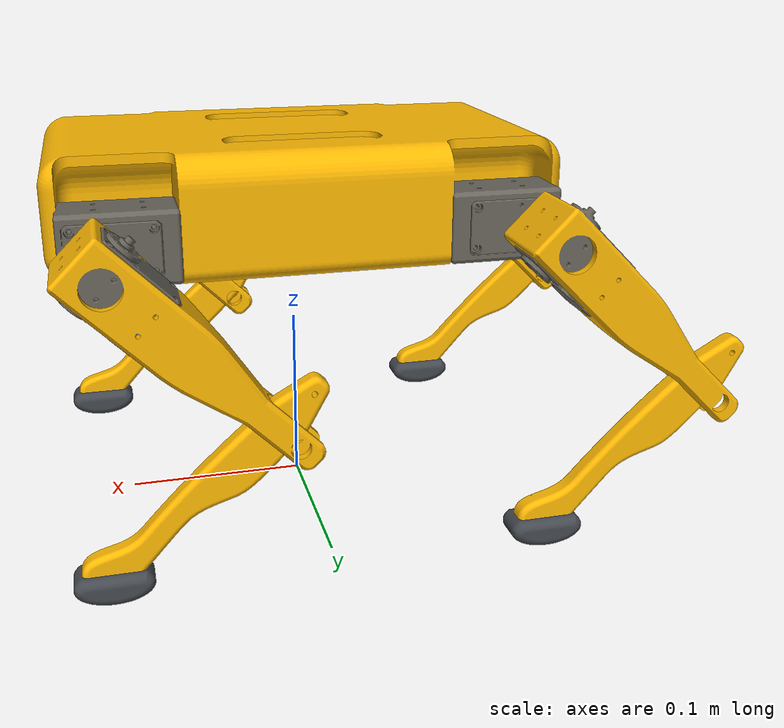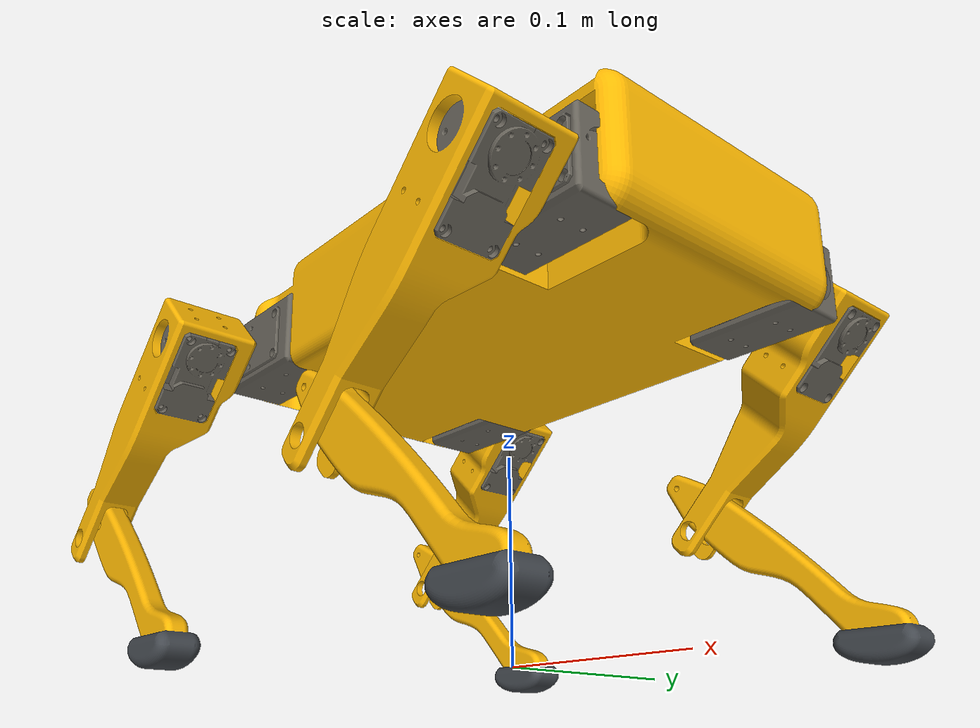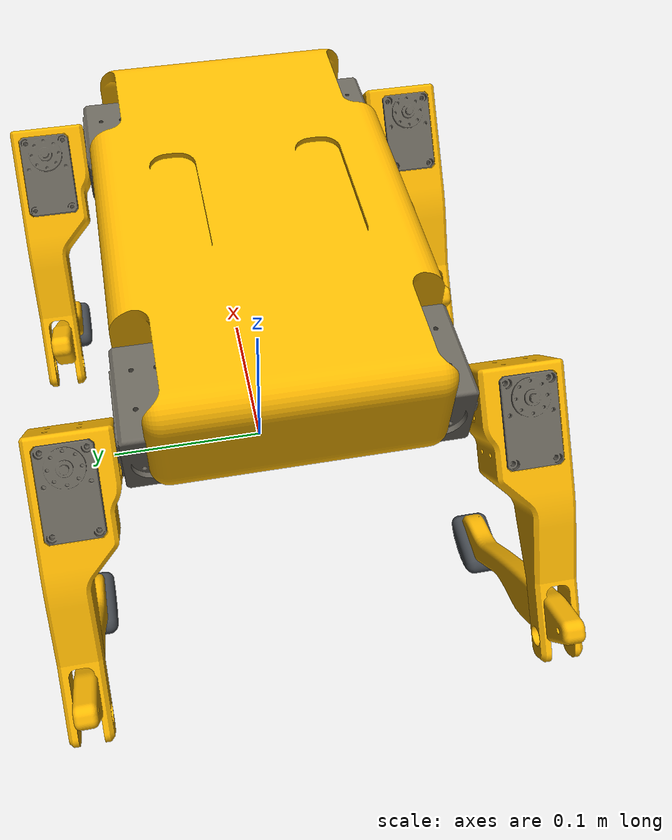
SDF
<sdf version='1.7'>
  <model name='quadruped'>
    <link name='base_footprint'>
      <inertial>
        <pose>0.001495 0.000162 0.172991 0 -0 0</pose>
        <mass>1.284</mass>
        <inertia>
          <ixx>0.00329487</ixx>
          <ixy>-2.69697e-06</ixy>
          <ixz>-1.45779e-05</ixz>
          <iyy>0.00465587</iyy>
          <iyz>-1.16619e-05</iyz>
          <izz>0.00726379</izz>
        </inertia>
      </inertial>
      <collision name='base_footprint_fixed_joint_lump__base_link_collision'>
        <pose>0 0 0.1492 0 -0 0</pose>
        <geometry>
          <mesh>
            <scale>1 1 1</scale>
            <uri>file:///home/almeida/caramel_ws/install/caramel_description/share/caramel_description/meshes/base_link.stl</uri>
          </mesh>
        </geometry>
        <surface>
          <contact>
            <ode/>
          </contact>
          <friction>
            <ode>
              <mu>0.4</mu>
              <mu2>0.4</mu2>
            </ode>
          </friction>
        </surface>
      </collision>
      <collision name='base_footprint_fixed_joint_lump__back_left_hip_fixed_collision_1'>
        <pose>-0.11455 0.07 0.17 0 -0 0</pose>
        <geometry>
          <sphere>
            <radius>0.001</radius>
          </sphere>
        </geometry>
      </collision>
      <collision name='base_footprint_fixed_joint_lump__back_right_hip_fixed_collision_2'>
        <pose>-0.11455 -0.07 0.17 0 -0 0</pose>
        <geometry>
          <sphere>
            <radius>0.001</radius>
          </sphere>
        </geometry>
      </collision>
      <collision name='base_footprint_fixed_joint_lump__front_left_hip_fixed_collision_3'>
        <pose>0.11455 0.07 0.17 0 -0 0</pose>
        <geometry>
          <sphere>
            <radius>0.001</radius>
          </sphere>
        </geometry>
      </collision>
      <collision name='base_footprint_fixed_joint_lump__front_right_hip_fixed_collision_4'>
        <pose>0.11455 -0.07 0.17 0 -0 0</pose>
        <geometry>
          <sphere>
            <radius>0.001</radius>
          </sphere>
        </geometry>
      </collision>
      <visual name='base_footprint_fixed_joint_lump__base_link_visual'>
        <pose>0 0 0.1492 0 -0 0</pose>
        <geometry>
          <mesh>
            <scale>1 1 1</scale>
            <uri>file:///home/almeida/caramel_ws/install/caramel_description/share/caramel_description/meshes/base_link.dae</uri>
          </mesh>
        </geometry>
      </visual>
      <self_collide>1</self_collide>
      <gravity>1</gravity>
      <sensor name='imu_sensor' type='imu'>
        <always_on>1</always_on>
        <update_rate>100</update_rate>
        <visualize>1</visualize>
        <topic>imu</topic>
        <plugin name='imu' filename='libgazebo_ros_imu_sensor.so'>
          <topicName>imu</topicName>
          <bodyName>imu_link</bodyName>
          <updateRateHZ>50.0</updateRateHZ>
          <gaussianNoise>0.0</gaussianNoise>
          <xyzOffset>0 0 0</xyzOffset>
          <rpyOffset>0 0 0</rpyOffset>
          <frameName>imu_link</frameName>
          <initialOrientationAsReference>0</initialOrientationAsReference>
        </plugin>
        <pose>0 0 0.17 0 -0 0</pose>
      </sensor>
    </link>
    <joint name='back_left_hip_roll_joint' type='revolute'>
      <pose relative_to='base_footprint'>-0.11455 0.07 0.17 0 -0 0</pose>
      <parent>base_footprint</parent>
      <child>back_left_hip</child>
      <axis>
        <xyz>1 0 0</xyz>
        <limit>
          <lower>-0.785375</lower>
          <upper>0.785375</upper>
          <effort>2</effort>
          <velocity>5.75</velocity>
        </limit>
        <dynamics>
          <damping>0.1</damping>
          <friction>0.01</friction>
          <spring_reference>0</spring_reference>
          <spring_stiffness>0</spring_stiffness>
        </dynamics>
      </axis>
    </joint>
    <link name='back_left_hip'>
      <pose relative_to='back_left_hip_roll_joint'>0 0 0 0 -0 0</pose>
      <inertial>
        <pose>0.011 0 0 3.1415 -0 3.1415</pose>
        <mass>0.077</mass>
        <inertia>
          <ixx>1.365e-05</ixx>
          <ixy>-6.888e-07</ixy>
          <ixz>2.025e-08</ixz>
          <iyy>1.824e-05</iyy>
          <iyz>-8.308e-09</iyz>
          <izz>2.204e-05</izz>
        </inertia>
      </inertial>
      <collision name='back_left_hip_collision'>
        <pose>0.0149 0 0 0 -0 0</pose>
        <geometry>
          <box>
            <size>0.0538 0.036 0.036</size>
          </box>
        </geometry>
        <surface>
          <contact>
            <ode/>
          </contact>
          <friction>
            <ode>
              <mu>0.4</mu>
              <mu2>0.4</mu2>
            </ode>
          </friction>
        </surface>
      </collision>
      <visual name='back_left_hip_visual'>
        <pose>0 0 0 3.1415 -0 3.1415</pose>
        <geometry>
          <mesh>
            <scale>1 1 1</scale>
            <uri>file:///home/almeida/caramel_ws/install/caramel_description/share/caramel_description/meshes/hip.dae</uri>
          </mesh>
        </geometry>
      </visual>
      <self_collide>1</self_collide>
    </link>
    <joint name='back_left_hip_pitch_joint' type='revolute'>
      <pose relative_to='back_left_hip'>0 0.0415 0 0 0.785375 0</pose>
      <parent>back_left_hip</parent>
      <child>back_left_femur</child>
      <axis>
        <xyz>0 1 0</xyz>
        <limit>
          <lower>-1.04717</lower>
          <upper>1.04717</upper>
          <effort>2</effort>
          <velocity>5.75</velocity>
        </limit>
        <dynamics>
          <damping>0.1</damping>
          <friction>0.01</friction>
          <spring_reference>0</spring_reference>
          <spring_stiffness>0</spring_stiffness>
        </dynamics>
      </axis>
    </joint>
    <link name='back_left_femur'>
      <pose relative_to='back_left_hip_pitch_joint'>0 0 0 0 -0 0</pose>
      <inertial>
        <pose>-0.000183 0.002 -0.019 0 -0 0</pose>
        <mass>0.118</mass>
        <inertia>
          <ixx>0.0001604</ixx>
          <ixy>-5.665e-08</ixy>
          <ixz>1.15e-06</ixz>
          <iyy>0.0001647</iyy>
          <iyz>1.108e-05</iyz>
          <izz>2.1e-05</izz>
        </inertia>
      </inertial>
      <collision name='back_left_femur_collision'>
        <pose>0 0 -0.0053 0 -0 0</pose>
        <geometry>
          <mesh>
            <scale>1 1 1</scale>
            <uri>file:///home/almeida/caramel_ws/install/caramel_description/share/caramel_description/meshes/femur.stl</uri>
          </mesh>
        </geometry>
        <surface>
          <contact>
            <ode/>
          </contact>
          <friction>
            <ode>
              <mu>0.4</mu>
              <mu2>0.4</mu2>
            </ode>
          </friction>
        </surface>
      </collision>
      <visual name='back_left_femur_visual'>
        <pose>0 0 -0.0053 0 -0 0</pose>
        <geometry>
          <mesh>
            <scale>1 1 1</scale>
            <uri>file:///home/almeida/caramel_ws/install/caramel_description/share/caramel_description/meshes/left_femur.dae</uri>
          </mesh>
        </geometry>
      </visual>
      <self_collide>1</self_collide>
    </link>
    <joint name='back_left_elbow_joint' type='revolute'>
      <pose relative_to='back_left_femur'>0 0.0068 -0.12 0 -1.57075 0</pose>
      <parent>back_left_femur</parent>
      <child>back_left_tibia</child>
      <axis>
        <xyz>0 1 0</xyz>
        <limit>
          <lower>-0.6283</lower>
          <upper>0.6283</upper>
          <effort>2</effort>
          <velocity>5.75</velocity>
        </limit>
        <dynamics>
          <damping>0</damping>
          <friction>0.01</friction>
          <spring_reference>0</spring_reference>
          <spring_stiffness>0</spring_stiffness>
        </dynamics>
      </axis>
    </joint>
    <link name='back_left_tibia'>
      <pose relative_to='back_left_elbow_joint'>0 0 0 0 -0 0</pose>
      <inertial>
        <pose>0.005 0 -0.06 0 -0 0</pose>
        <mass>0.035</mass>
        <inertia>
          <ixx>8.305e-05</ixx>
          <ixy>-4.892e-10</ixy>
          <ixz>6.002e-06</ixz>
          <iyy>8.447e-05</iyy>
          <iyz>-4.088e-10</iyz>
          <izz>2.687e-06</izz>
        </inertia>
      </inertial>
      <collision name='back_left_tibia_collision'>
        <pose>0 0 0 0 -0 0</pose>
        <geometry>
          <mesh>
            <scale>1 1 1</scale>
            <uri>file:///home/almeida/caramel_ws/install/caramel_description/share/caramel_description/meshes/tibia.stl</uri>
          </mesh>
        </geometry>
        <surface>
          <contact>
            <ode>
              <kp>1e+06</kp>
              <kd>100</kd>
              <min_depth>0.0002</min_depth>
            </ode>
          </contact>
          <friction>
            <ode>
              <mu>1</mu>
              <mu2>1</mu2>
            </ode>
          </friction>
        </surface>
      </collision>
      <visual name='back_left_tibia_visual'>
        <pose>0 0 0 0 -0 0</pose>
        <geometry>
          <mesh>
            <scale>1 1 1</scale>
            <uri>file:///home/almeida/caramel_ws/install/caramel_description/share/caramel_description/meshes/tibia.dae</uri>
          </mesh>
        </geometry>
      </visual>
      <self_collide>1</self_collide>
    </link>
    <joint name='back_right_hip_roll_joint' type='revolute'>
      <pose relative_to='base_footprint'>-0.11455 -0.07 0.17 0 -0 0</pose>
      <parent>base_footprint</parent>
      <child>back_right_hip</child>
      <axis>
        <xyz>1 0 0</xyz>
        <limit>
          <lower>-0.785375</lower>
          <upper>0.785375</upper>
          <effort>2</effort>
          <velocity>5.75</velocity>
        </limit>
        <dynamics>
          <damping>0.1</damping>
          <friction>0.01</friction>
          <spring_reference>0</spring_reference>
          <spring_stiffness>0</spring_stiffness>
        </dynamics>
      </axis>
    </joint>
    <link name='back_right_hip'>
      <pose relative_to='back_right_hip_roll_joint'>0 0 0 0 -0 0</pose>
      <inertial>
        <pose>0.011 0 0 0 -0 3.1415</pose>
        <mass>0.077</mass>
        <inertia>
          <ixx>1.365e-05</ixx>
          <ixy>-6.888e-07</ixy>
          <ixz>2.025e-08</ixz>
          <iyy>1.824e-05</iyy>
          <iyz>-8.308e-09</iyz>
          <izz>2.204e-05</izz>
        </inertia>
      </inertial>
      <collision name='back_right_hip_collision'>
        <pose>0.0149 0 0 0 -0 0</pose>
        <geometry>
          <box>
            <size>0.0538 0.036 0.036</size>
          </box>
        </geometry>
        <surface>
          <contact>
            <ode/>
          </contact>
          <friction>
            <ode>
              <mu>0.4</mu>
              <mu2>0.4</mu2>
            </ode>
          </friction>
        </surface>
      </collision>
      <visual name='back_right_hip_visual'>
        <pose>0 0 0 0 -0 3.1415</pose>
        <geometry>
          <mesh>
            <scale>1 1 1</scale>
            <uri>file:///home/almeida/caramel_ws/install/caramel_description/share/caramel_description/meshes/hip.dae</uri>
          </mesh>
        </geometry>
      </visual>
      <self_collide>1</self_collide>
    </link>
    <joint name='back_right_hip_pitch_joint' type='revolute'>
      <pose relative_to='back_right_hip'>0 -0.0415 0 0 0.785375 0</pose>
      <parent>back_right_hip</parent>
      <child>back_right_femur</child>
      <axis>
        <xyz>0 1 0</xyz>
        <limit>
          <lower>-1.04717</lower>
          <upper>1.04717</upper>
          <effort>2</effort>
          <velocity>5.75</velocity>
        </limit>
        <dynamics>
          <damping>0.1</damping>
          <friction>0.01</friction>
          <spring_reference>0</spring_reference>
          <spring_stiffness>0</spring_stiffness>
        </dynamics>
      </axis>
    </joint>
    <link name='back_right_femur'>
      <pose relative_to='back_right_hip_pitch_joint'>0 0 0 0 -0 0</pose>
      <inertial>
        <pose>-0.000183 -0.002 -0.019 0 -0 0</pose>
        <mass>0.118</mass>
        <inertia>
          <ixx>0.0001604</ixx>
          <ixy>3.969e-08</ixy>
          <ixz>1.151e-06</ixz>
          <iyy>0.0001647</iyy>
          <iyz>-1.105e-05</iyz>
          <izz>2.099e-05</izz>
        </inertia>
      </inertial>
      <collision name='back_right_femur_collision'>
        <pose>0 0 -0.0053 0 -0 3.1415</pose>
        <geometry>
          <mesh>
            <scale>1 1 1</scale>
            <uri>file:///home/almeida/caramel_ws/install/caramel_description/share/caramel_description/meshes/femur.stl</uri>
          </mesh>
        </geometry>
        <surface>
          <contact>
            <ode/>
          </contact>
          <friction>
            <ode>
              <mu>0.4</mu>
              <mu2>0.4</mu2>
            </ode>
          </friction>
        </surface>
      </collision>
      <visual name='back_right_femur_visual'>
        <pose>0 0 -0.0053 0 -0 0</pose>
        <geometry>
          <mesh>
            <scale>1 1 1</scale>
            <uri>file:///home/almeida/caramel_ws/install/caramel_description/share/caramel_description/meshes/right_femur.dae</uri>
          </mesh>
        </geometry>
      </visual>
      <self_collide>1</self_collide>
    </link>
    <joint name='back_right_elbow_joint' type='revolute'>
      <pose relative_to='back_right_femur'>0 -0.0068 -0.12 0 -1.57075 0</pose>
      <parent>back_right_femur</parent>
      <child>back_right_tibia</child>
      <axis>
        <xyz>0 1 0</xyz>
        <limit>
          <lower>-0.6283</lower>
          <upper>0.6283</upper>
          <effort>2</effort>
          <velocity>5.75</velocity>
        </limit>
        <dynamics>
          <damping>0</damping>
          <friction>0.01</friction>
          <spring_reference>0</spring_reference>
          <spring_stiffness>0</spring_stiffness>
        </dynamics>
      </axis>
    </joint>
    <link name='back_right_tibia'>
      <pose relative_to='back_right_elbow_joint'>0 0 0 0 -0 0</pose>
      <inertial>
        <pose>0.005 0 -0.06 0 -0 0</pose>
        <mass>0.035</mass>
        <inertia>
          <ixx>8.305e-05</ixx>
          <ixy>-4.892e-10</ixy>
          <ixz>6.002e-06</ixz>
          <iyy>8.447e-05</iyy>
          <iyz>-4.088e-10</iyz>
          <izz>2.687e-06</izz>
        </inertia>
      </inertial>
      <collision name='back_right_tibia_collision'>
        <pose>0 0 0 0 -0 0</pose>
        <geometry>
          <mesh>
            <scale>1 1 1</scale>
            <uri>file:///home/almeida/caramel_ws/install/caramel_description/share/caramel_description/meshes/tibia.stl</uri>
          </mesh>
        </geometry>
        <surface>
          <contact>
            <ode>
              <kp>1e+06</kp>
              <kd>100</kd>
              <min_depth>0.0002</min_depth>
            </ode>
          </contact>
          <friction>
            <ode>
              <mu>1</mu>
              <mu2>1</mu2>
            </ode>
          </friction>
        </surface>
      </collision>
      <visual name='back_right_tibia_visual'>
        <pose>0 0 0 0 -0 0</pose>
        <geometry>
          <mesh>
            <scale>1 1 1</scale>
            <uri>file:///home/almeida/caramel_ws/install/caramel_description/share/caramel_description/meshes/tibia.dae</uri>
          </mesh>
        </geometry>
      </visual>
      <self_collide>1</self_collide>
    </link>
    <joint name='front_left_hip_roll_joint' type='revolute'>
      <pose relative_to='base_footprint'>0.11455 0.07 0.17 0 -0 0</pose>
      <parent>base_footprint</parent>
      <child>front_left_hip</child>
      <axis>
        <xyz>1 0 0</xyz>
        <limit>
          <lower>-0.785375</lower>
          <upper>0.785375</upper>
          <effort>2</effort>
          <velocity>5.75</velocity>
        </limit>
        <dynamics>
          <damping>0.1</damping>
          <friction>0.01</friction>
          <spring_reference>0</spring_reference>
          <spring_stiffness>0</spring_stiffness>
        </dynamics>
      </axis>
    </joint>
    <link name='front_left_hip'>
      <pose relative_to='front_left_hip_roll_joint'>0 0 0 0 -0 0</pose>
      <inertial>
        <pose>-0.011 0 0 0 -0 0</pose>
        <mass>0.077</mass>
        <inertia>
          <ixx>1.365e-05</ixx>
          <ixy>-6.888e-07</ixy>
          <ixz>2.025e-08</ixz>
          <iyy>1.824e-05</iyy>
          <iyz>-8.308e-09</iyz>
          <izz>2.204e-05</izz>
        </inertia>
      </inertial>
      <collision name='front_left_hip_collision'>
        <pose>-0.0149 0 0 0 -0 0</pose>
        <geometry>
          <box>
            <size>0.0538 0.036 0.036</size>
          </box>
        </geometry>
        <surface>
          <contact>
            <ode/>
          </contact>
          <friction>
            <ode>
              <mu>0.4</mu>
              <mu2>0.4</mu2>
            </ode>
          </friction>
        </surface>
      </collision>
      <visual name='front_left_hip_visual'>
        <pose>0 0 0 0 -0 0</pose>
        <geometry>
          <mesh>
            <scale>1 1 1</scale>
            <uri>file:///home/almeida/caramel_ws/install/caramel_description/share/caramel_description/meshes/hip.dae</uri>
          </mesh>
        </geometry>
      </visual>
      <self_collide>1</self_collide>
    </link>
    <joint name='front_left_hip_pitch_joint' type='revolute'>
      <pose relative_to='front_left_hip'>0 0.0415 0 0 0.785375 0</pose>
      <parent>front_left_hip</parent>
      <child>front_left_femur</child>
      <axis>
        <xyz>0 1 0</xyz>
        <limit>
          <lower>-1.04717</lower>
          <upper>1.04717</upper>
          <effort>2</effort>
          <velocity>5.75</velocity>
        </limit>
        <dynamics>
          <damping>0.1</damping>
          <friction>0.01</friction>
          <spring_reference>0</spring_reference>
          <spring_stiffness>0</spring_stiffness>
        </dynamics>
      </axis>
    </joint>
    <link name='front_left_femur'>
      <pose relative_to='front_left_hip_pitch_joint'>0 0 0 0 -0 0</pose>
      <inertial>
        <pose>-0.000183 0.002 -0.019 0 -0 0</pose>
        <mass>0.118</mass>
        <inertia>
          <ixx>0.0001604</ixx>
          <ixy>-5.665e-08</ixy>
          <ixz>1.15e-06</ixz>
          <iyy>0.0001647</iyy>
          <iyz>1.108e-05</iyz>
          <izz>2.1e-05</izz>
        </inertia>
      </inertial>
      <collision name='front_left_femur_collision'>
        <pose>0 0 -0.0053 0 -0 0</pose>
        <geometry>
          <mesh>
            <scale>1 1 1</scale>
            <uri>file:///home/almeida/caramel_ws/install/caramel_description/share/caramel_description/meshes/femur.stl</uri>
          </mesh>
        </geometry>
        <surface>
          <contact>
            <ode/>
          </contact>
          <friction>
            <ode>
              <mu>0.4</mu>
              <mu2>0.4</mu2>
            </ode>
          </friction>
        </surface>
      </collision>
      <visual name='front_left_femur_visual'>
        <pose>0 0 -0.0053 0 -0 0</pose>
        <geometry>
          <mesh>
            <scale>1 1 1</scale>
            <uri>file:///home/almeida/caramel_ws/install/caramel_description/share/caramel_description/meshes/left_femur.dae</uri>
          </mesh>
        </geometry>
      </visual>
      <self_collide>1</self_collide>
    </link>
    <joint name='front_left_elbow_joint' type='revolute'>
      <pose relative_to='front_left_femur'>0 0.0068 -0.12 0 -1.57075 0</pose>
      <parent>front_left_femur</parent>
      <child>front_left_tibia</child>
      <axis>
        <xyz>0 1 0</xyz>
        <limit>
          <lower>-0.6283</lower>
          <upper>0.6283</upper>
          <effort>2</effort>
          <velocity>5.75</velocity>
        </limit>
        <dynamics>
          <damping>0</damping>
          <friction>0.01</friction>
          <spring_reference>0</spring_reference>
          <spring_stiffness>0</spring_stiffness>
        </dynamics>
      </axis>
    </joint>
    <link name='front_left_tibia'>
      <pose relative_to='front_left_elbow_joint'>0 0 0 0 -0 0</pose>
      <inertial>
        <pose>0.005 0 -0.06 0 -0 0</pose>
        <mass>0.035</mass>
        <inertia>
          <ixx>8.305e-05</ixx>
          <ixy>-4.892e-10</ixy>
          <ixz>6.002e-06</ixz>
          <iyy>8.447e-05</iyy>
          <iyz>-4.088e-10</iyz>
          <izz>2.687e-06</izz>
        </inertia>
      </inertial>
      <collision name='front_left_tibia_collision'>
        <pose>0 0 0 0 -0 0</pose>
        <geometry>
          <mesh>
            <scale>1 1 1</scale>
            <uri>file:///home/almeida/caramel_ws/install/caramel_description/share/caramel_description/meshes/tibia.stl</uri>
          </mesh>
        </geometry>
        <surface>
          <contact>
            <ode>
              <kp>1e+06</kp>
              <kd>100</kd>
              <min_depth>0.0002</min_depth>
            </ode>
          </contact>
          <friction>
            <ode>
              <mu>1</mu>
              <mu2>1</mu2>
            </ode>
          </friction>
        </surface>
      </collision>
      <visual name='front_left_tibia_visual'>
        <pose>0 0 0 0 -0 0</pose>
        <geometry>
          <mesh>
            <scale>1 1 1</scale>
            <uri>file:///home/almeida/caramel_ws/install/caramel_description/share/caramel_description/meshes/tibia.dae</uri>
          </mesh>
        </geometry>
      </visual>
      <self_collide>1</self_collide>
    </link>
    <joint name='front_right_hip_roll_joint' type='revolute'>
      <pose relative_to='base_footprint'>0.11455 -0.07 0.17 0 -0 0</pose>
      <parent>base_footprint</parent>
      <child>front_right_hip</child>
      <axis>
        <xyz>1 0 0</xyz>
        <limit>
          <lower>-0.785375</lower>
          <upper>0.785375</upper>
          <effort>2</effort>
          <velocity>5.75</velocity>
        </limit>
        <dynamics>
          <damping>0.1</damping>
          <friction>0.01</friction>
          <spring_reference>0</spring_reference>
          <spring_stiffness>0</spring_stiffness>
        </dynamics>
      </axis>
    </joint>
    <link name='front_right_hip'>
      <pose relative_to='front_right_hip_roll_joint'>0 0 0 0 -0 0</pose>
      <inertial>
        <pose>-0.011 0 0 3.1415 -0 0</pose>
        <mass>0.077</mass>
        <inertia>
          <ixx>1.365e-05</ixx>
          <ixy>-6.888e-07</ixy>
          <ixz>2.025e-08</ixz>
          <iyy>1.824e-05</iyy>
          <iyz>-8.308e-09</iyz>
          <izz>2.204e-05</izz>
        </inertia>
      </inertial>
      <collision name='front_right_hip_collision'>
        <pose>-0.0149 0 0 0 -0 0</pose>
        <geometry>
          <box>
            <size>0.0538 0.036 0.036</size>
          </box>
        </geometry>
        <surface>
          <contact>
            <ode/>
          </contact>
          <friction>
            <ode>
              <mu>0.4</mu>
              <mu2>0.4</mu2>
            </ode>
          </friction>
        </surface>
      </collision>
      <visual name='front_right_hip_visual'>
        <pose>0 0 0 3.1415 -0 0</pose>
        <geometry>
          <mesh>
            <scale>1 1 1</scale>
            <uri>file:///home/almeida/caramel_ws/install/caramel_description/share/caramel_description/meshes/hip.dae</uri>
          </mesh>
        </geometry>
      </visual>
      <self_collide>1</self_collide>
    </link>
    <joint name='front_right_hip_pitch_joint' type='revolute'>
      <pose relative_to='front_right_hip'>0 -0.0415 0 0 0.785375 0</pose>
      <parent>front_right_hip</parent>
      <child>front_right_femur</child>
      <axis>
        <xyz>0 1 0</xyz>
        <limit>
          <lower>-1.04717</lower>
          <upper>1.04717</upper>
          <effort>2</effort>
          <velocity>5.75</velocity>
        </limit>
        <dynamics>
          <damping>0.1</damping>
          <friction>0.01</friction>
          <spring_reference>0</spring_reference>
          <spring_stiffness>0</spring_stiffness>
        </dynamics>
      </axis>
    </joint>
    <link name='front_right_femur'>
      <pose relative_to='front_right_hip_pitch_joint'>0 0 0 0 -0 0</pose>
      <inertial>
        <pose>-0.000183 -0.002 -0.019 0 -0 0</pose>
        <mass>0.118</mass>
        <inertia>
          <ixx>0.0001604</ixx>
          <ixy>3.969e-08</ixy>
          <ixz>1.151e-06</ixz>
          <iyy>0.0001647</iyy>
          <iyz>-1.105e-05</iyz>
          <izz>2.099e-05</izz>
        </inertia>
      </inertial>
      <collision name='front_right_femur_collision'>
        <pose>0 0 -0.0053 0 -0 3.1415</pose>
        <geometry>
          <mesh>
            <scale>1 1 1</scale>
            <uri>file:///home/almeida/caramel_ws/install/caramel_description/share/caramel_description/meshes/femur.stl</uri>
          </mesh>
        </geometry>
        <surface>
          <contact>
            <ode/>
          </contact>
          <friction>
            <ode>
              <mu>0.4</mu>
              <mu2>0.4</mu2>
            </ode>
          </friction>
        </surface>
      </collision>
      <visual name='front_right_femur_visual'>
        <pose>0 0 -0.0053 0 -0 0</pose>
        <geometry>
          <mesh>
            <scale>1 1 1</scale>
            <uri>file:///home/almeida/caramel_ws/install/caramel_description/share/caramel_description/meshes/right_femur.dae</uri>
          </mesh>
        </geometry>
      </visual>
      <self_collide>1</self_collide>
    </link>
    <joint name='front_right_elbow_joint' type='revolute'>
      <pose relative_to='front_right_femur'>0 -0.0068 -0.12 0 -1.57075 0</pose>
      <parent>front_right_femur</parent>
      <child>front_right_tibia</child>
      <axis>
        <xyz>0 1 0</xyz>
        <limit>
          <lower>-0.6283</lower>
          <upper>0.6283</upper>
          <effort>2</effort>
          <velocity>5.75</velocity>
        </limit>
        <dynamics>
          <damping>0</damping>
          <friction>0.01</friction>
          <spring_reference>0</spring_reference>
          <spring_stiffness>0</spring_stiffness>
        </dynamics>
      </axis>
    </joint>
    <link name='front_right_tibia'>
      <pose relative_to='front_right_elbow_joint'>0 0 0 0 -0 0</pose>
      <inertial>
        <pose>0.005 0 -0.06 0 -0 0</pose>
        <mass>0.035</mass>
        <inertia>
          <ixx>8.305e-05</ixx>
          <ixy>-4.892e-10</ixy>
          <ixz>6.002e-06</ixz>
          <iyy>8.447e-05</iyy>
          <iyz>-4.088e-10</iyz>
          <izz>2.687e-06</izz>
        </inertia>
      </inertial>
      <collision name='front_right_tibia_collision'>
        <pose>0 0 0 0 -0 0</pose>
        <geometry>
          <mesh>
            <scale>1 1 1</scale>
            <uri>file:///home/almeida/caramel_ws/install/caramel_description/share/caramel_description/meshes/tibia.stl</uri>
          </mesh>
        </geometry>
        <surface>
          <contact>
            <ode>
              <kp>1e+06</kp>
              <kd>100</kd>
              <min_depth>0.0002</min_depth>
            </ode>
          </contact>
          <friction>
            <ode>
              <mu>1</mu>
              <mu2>1</mu2>
            </ode>
          </friction>
        </surface>
      </collision>
      <visual name='front_right_tibia_visual'>
        <pose>0 0 0 0 -0 0</pose>
        <geometry>
          <mesh>
            <scale>1 1 1</scale>
            <uri>file:///home/almeida/caramel_ws/install/caramel_description/share/caramel_description/meshes/tibia.dae</uri>
          </mesh>
        </geometry>
      </visual>
      <self_collide>1</self_collide>
    </link>
    <static>0</static>
    <plugin name='gazebo_ros2_control' filename='libgazebo_ros2_control.so'>
      <parameters>/home/almeida/caramel_ws/install/caramel_control/share/caramel_control/config/leg_controllers.yaml</parameters>
    </plugin>
  </model>
</sdf>
